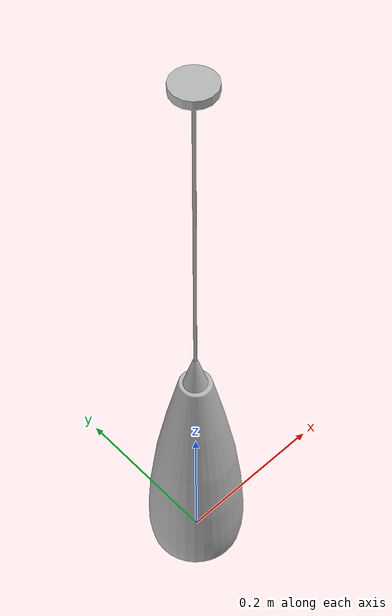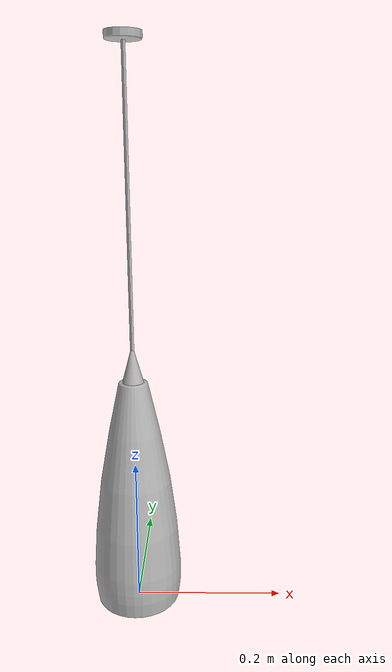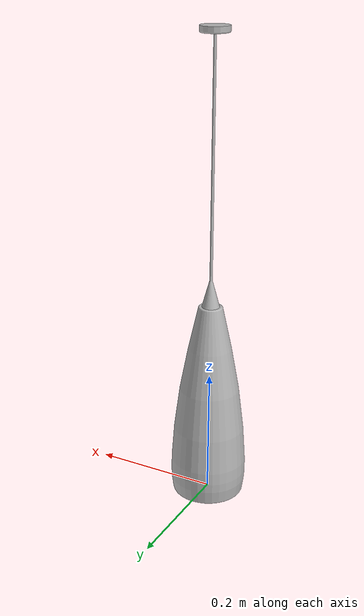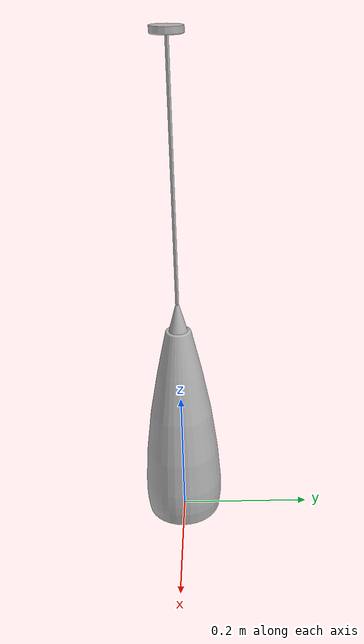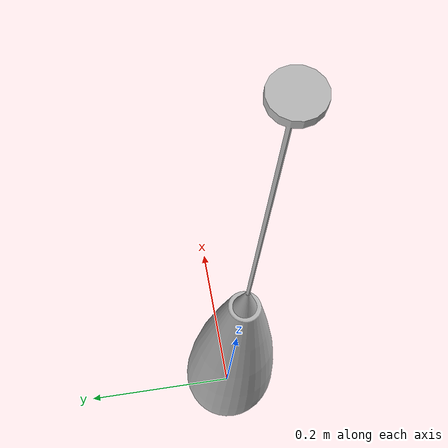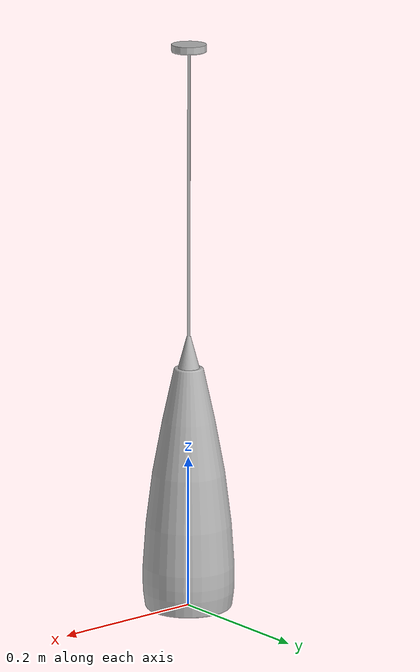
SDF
<?xml version='1.0'?>
<sdf version='1.4'>
  <model name='630'>
    <pose>0 0 0 0 0 0</pose>
    <static>true</static>
    <link name='link'>
      <collision name='collision'>
        <pose>0 0 0 0 0 0</pose>
        <geometry>
          <box>
            <size>0.119556 0.119556 2</size>
          </box>
        </geometry>
      </collision>
      <visual name='visual'>
        <pose>0 0 0 0 0 0</pose>
        <geometry>
          <mesh><uri>model://630/630.dae</uri></mesh>
        </geometry>
      </visual>
    </link>
  </model>
</sdf>
